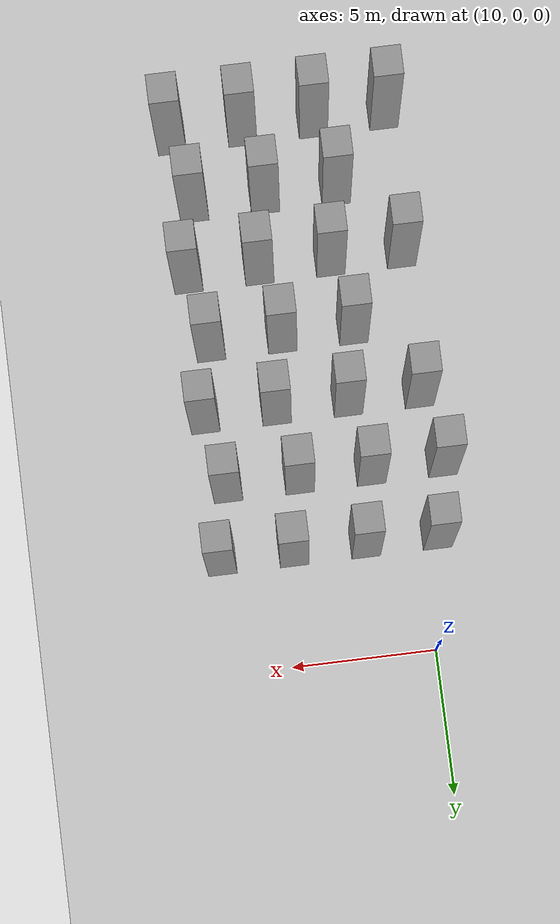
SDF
<sdf version="1.7">
 <world name="default">
  <model name="ground_plane">
   <static>1</static>
   <link name="link">
    <collision name="collision">
     <geometry><plane><normal>0 0 1</normal><size>100 100</size></plane></geometry>
     <surface>
      <contact><collide_bitmask>65535</collide_bitmask></contact>
      <friction><ode><mu>100</mu><mu2>50</mu2></ode></friction>
     </surface>
    </collision>
    <visual name="visual">
     <cast_shadows>0</cast_shadows>
     <geometry><plane><normal>0 0 1</normal><size>100 100</size></plane></geometry>
     <material>
      <script><uri>file://media/materials/scripts/gazebo.material</uri><name>Gazebo/Grey</name></script>
     </material>
    </visual>
   </link>
  </model>
  <model name="unit_box_static12">
   <link name="link">
    <inertial>
     <mass>1</mass>
     <inertia>
      <ixx>0.166667</ixx>
      <ixy>0</ixy>
      <ixz>0</ixz>
      <iyy>0.166667</iyy>
      <iyz>0</iyz>
      <izz>0.166667</izz>
     </inertia>
    </inertial>
    <visual name="visual">
     <geometry><box><size>1 1 8</size></box></geometry>
     <material>
      <script><name>Gazebo/Grey</name><uri>file://media/materials/scripts/gazebo.material</uri></script>
      <shader type="pixel"/>
     </material>
    </visual>
    <collision name="collision">
     <geometry><box><size>1 1 8</size></box></geometry>
     <surface>
      <friction>
       <ode><mu>1</mu><mu2>1</mu2><fdir1>0 0 0</fdir1><slip1>0</slip1><slip2>0</slip2></ode>
       <torsional>
        <coefficient>1</coefficient>
        <patch_radius>0</patch_radius>
        <surface_radius>0</surface_radius>
        <use_patch_radius>1</use_patch_radius>
        <ode><slip>0</slip></ode>
       </torsional>
      </friction>
      <bounce><restitution_coefficient>0</restitution_coefficient><threshold>1e+06</threshold></bounce>
      <contact>
       <collide_without_contact>0</collide_without_contact>
       <collide_without_contact_bitmask>1</collide_without_contact_bitmask>
       <collide_bitmask>1</collide_bitmask>
       <ode>
        <soft_cfm>0</soft_cfm>
        <soft_erp>0.2</soft_erp>
        <kp>1e+13</kp>
        <kd>1</kd>
        <max_vel>0.01</max_vel>
        <min_depth>0</min_depth>
       </ode>
       <bullet>
        <split_impulse>1</split_impulse>
        <split_impulse_penetration_threshold>-0.01</split_impulse_penetration_threshold>
        <soft_cfm>0</soft_cfm>
        <soft_erp>0.2</soft_erp>
        <kp>1e+13</kp>
        <kd>1</kd>
       </bullet>
      </contact>
     </surface>
    </collision>
   </link>
   <static>1</static>
   <pose>9.5 -19 4 0 -0 0</pose>
  </model>
  <model name="unit_box_static13">
   <link name="link">
    <inertial>
     <mass>1</mass>
     <inertia>
      <ixx>0.166667</ixx>
      <ixy>0</ixy>
      <ixz>0</ixz>
      <iyy>0.166667</iyy>
      <iyz>0</iyz>
      <izz>0.166667</izz>
     </inertia>
    </inertial>
    <visual name="visual">
     <geometry><box><size>1 1 8</size></box></geometry>
     <material>
      <script><name>Gazebo/Grey</name><uri>file://media/materials/scripts/gazebo.material</uri></script>
      <shader type="pixel"/>
     </material>
    </visual>
    <collision name="collision">
     <geometry><box><size>1 1 8</size></box></geometry>
     <surface>
      <friction>
       <ode><mu>1</mu><mu2>1</mu2><fdir1>0 0 0</fdir1><slip1>0</slip1><slip2>0</slip2></ode>
       <torsional>
        <coefficient>1</coefficient>
        <patch_radius>0</patch_radius>
        <surface_radius>0</surface_radius>
        <use_patch_radius>1</use_patch_radius>
        <ode><slip>0</slip></ode>
       </torsional>
      </friction>
      <bounce><restitution_coefficient>0</restitution_coefficient><threshold>1e+06</threshold></bounce>
      <contact>
       <collide_without_contact>0</collide_without_contact>
       <collide_without_contact_bitmask>1</collide_without_contact_bitmask>
       <collide_bitmask>1</collide_bitmask>
       <ode>
        <soft_cfm>0</soft_cfm>
        <soft_erp>0.2</soft_erp>
        <kp>1e+13</kp>
        <kd>1</kd>
        <max_vel>0.01</max_vel>
        <min_depth>0</min_depth>
       </ode>
       <bullet>
        <split_impulse>1</split_impulse>
        <split_impulse_penetration_threshold>-0.01</split_impulse_penetration_threshold>
        <soft_cfm>0</soft_cfm>
        <soft_erp>0.2</soft_erp>
        <kp>1e+13</kp>
        <kd>1</kd>
       </bullet>
      </contact>
     </surface>
    </collision>
   </link>
   <static>1</static>
   <pose>12 -19 4 0 -0 0</pose>
  </model>
  <model name="unit_box_static14">
   <link name="link">
    <inertial>
     <mass>1</mass>
     <inertia>
      <ixx>0.166667</ixx>
      <ixy>0</ixy>
      <ixz>0</ixz>
      <iyy>0.166667</iyy>
      <iyz>0</iyz>
      <izz>0.166667</izz>
     </inertia>
    </inertial>
    <visual name="visual">
     <geometry><box><size>1 1 8</size></box></geometry>
     <material>
      <script><name>Gazebo/Grey</name><uri>file://media/materials/scripts/gazebo.material</uri></script>
      <shader type="pixel"/>
     </material>
    </visual>
    <collision name="collision">
     <geometry><box><size>1 1 8</size></box></geometry>
     <surface>
      <friction>
       <ode><mu>1</mu><mu2>1</mu2><fdir1>0 0 0</fdir1><slip1>0</slip1><slip2>0</slip2></ode>
       <torsional>
        <coefficient>1</coefficient>
        <patch_radius>0</patch_radius>
        <surface_radius>0</surface_radius>
        <use_patch_radius>1</use_patch_radius>
        <ode><slip>0</slip></ode>
       </torsional>
      </friction>
      <bounce><restitution_coefficient>0</restitution_coefficient><threshold>1e+06</threshold></bounce>
      <contact>
       <collide_without_contact>0</collide_without_contact>
       <collide_without_contact_bitmask>1</collide_without_contact_bitmask>
       <collide_bitmask>1</collide_bitmask>
       <ode>
        <soft_cfm>0</soft_cfm>
        <soft_erp>0.2</soft_erp>
        <kp>1e+13</kp>
        <kd>1</kd>
        <max_vel>0.01</max_vel>
        <min_depth>0</min_depth>
       </ode>
       <bullet>
        <split_impulse>1</split_impulse>
        <split_impulse_penetration_threshold>-0.01</split_impulse_penetration_threshold>
        <soft_cfm>0</soft_cfm>
        <soft_erp>0.2</soft_erp>
        <kp>1e+13</kp>
        <kd>1</kd>
       </bullet>
      </contact>
     </surface>
    </collision>
   </link>
   <static>1</static>
   <pose>14.5 -19 4 0 -0 0</pose>
  </model>
  <model name="unit_box_static15">
   <link name="link">
    <inertial>
     <mass>1</mass>
     <inertia>
      <ixx>0.166667</ixx>
      <ixy>0</ixy>
      <ixz>0</ixz>
      <iyy>0.166667</iyy>
      <iyz>0</iyz>
      <izz>0.166667</izz>
     </inertia>
    </inertial>
    <visual name="visual">
     <geometry><box><size>1 1 8</size></box></geometry>
     <material>
      <script><name>Gazebo/Grey</name><uri>file://media/materials/scripts/gazebo.material</uri></script>
      <shader type="pixel"/>
     </material>
    </visual>
    <collision name="collision">
     <geometry><box><size>1 1 8</size></box></geometry>
     <surface>
      <friction>
       <ode><mu>1</mu><mu2>1</mu2><fdir1>0 0 0</fdir1><slip1>0</slip1><slip2>0</slip2></ode>
       <torsional>
        <coefficient>1</coefficient>
        <patch_radius>0</patch_radius>
        <surface_radius>0</surface_radius>
        <use_patch_radius>1</use_patch_radius>
        <ode><slip>0</slip></ode>
       </torsional>
      </friction>
      <bounce><restitution_coefficient>0</restitution_coefficient><threshold>1e+06</threshold></bounce>
      <contact>
       <collide_without_contact>0</collide_without_contact>
       <collide_without_contact_bitmask>1</collide_without_contact_bitmask>
       <collide_bitmask>1</collide_bitmask>
       <ode>
        <soft_cfm>0</soft_cfm>
        <soft_erp>0.2</soft_erp>
        <kp>1e+13</kp>
        <kd>1</kd>
        <max_vel>0.01</max_vel>
        <min_depth>0</min_depth>
       </ode>
       <bullet>
        <split_impulse>1</split_impulse>
        <split_impulse_penetration_threshold>-0.01</split_impulse_penetration_threshold>
        <soft_cfm>0</soft_cfm>
        <soft_erp>0.2</soft_erp>
        <kp>1e+13</kp>
        <kd>1</kd>
       </bullet>
      </contact>
     </surface>
    </collision>
   </link>
   <static>1</static>
   <pose>17 -19 4 0 -0 0</pose>
  </model>
  <model name="unit_box_static27">
   <link name="link">
    <inertial>
     <mass>1</mass>
     <inertia>
      <ixx>0.166667</ixx>
      <ixy>0</ixy>
      <ixz>0</ixz>
      <iyy>0.166667</iyy>
      <iyz>0</iyz>
      <izz>0.166667</izz>
     </inertia>
    </inertial>
    <visual name="visual">
     <geometry><box><size>1 1 8</size></box></geometry>
     <material>
      <script><name>Gazebo/Grey</name><uri>file://media/materials/scripts/gazebo.material</uri></script>
      <shader type="pixel"/>
     </material>
    </visual>
    <collision name="collision">
     <geometry><box><size>1 1 8</size></box></geometry>
     <surface>
      <friction>
       <ode><mu>1</mu><mu2>1</mu2><fdir1>0 0 0</fdir1><slip1>0</slip1><slip2>0</slip2></ode>
       <torsional>
        <coefficient>1</coefficient>
        <patch_radius>0</patch_radius>
        <surface_radius>0</surface_radius>
        <use_patch_radius>1</use_patch_radius>
        <ode><slip>0</slip></ode>
       </torsional>
      </friction>
      <bounce><restitution_coefficient>0</restitution_coefficient><threshold>1e+06</threshold></bounce>
      <contact>
       <collide_without_contact>0</collide_without_contact>
       <collide_without_contact_bitmask>1</collide_without_contact_bitmask>
       <collide_bitmask>1</collide_bitmask>
       <ode>
        <soft_cfm>0</soft_cfm>
        <soft_erp>0.2</soft_erp>
        <kp>1e+13</kp>
        <kd>1</kd>
        <max_vel>0.01</max_vel>
        <min_depth>0</min_depth>
       </ode>
       <bullet>
        <split_impulse>1</split_impulse>
        <split_impulse_penetration_threshold>-0.01</split_impulse_penetration_threshold>
        <soft_cfm>0</soft_cfm>
        <soft_erp>0.2</soft_erp>
        <kp>1e+13</kp>
        <kd>1</kd>
       </bullet>
      </contact>
     </surface>
    </collision>
   </link>
   <static>1</static>
   <pose>11.5 -16.5 4 0 -0 0</pose>
  </model>
  <model name="unit_box_static28">
   <link name="link">
    <inertial>
     <mass>1</mass>
     <inertia>
      <ixx>0.166667</ixx>
      <ixy>0</ixy>
      <ixz>0</ixz>
      <iyy>0.166667</iyy>
      <iyz>0</iyz>
      <izz>0.166667</izz>
     </inertia>
    </inertial>
    <visual name="visual">
     <geometry><box><size>1 1 8</size></box></geometry>
     <material>
      <script><name>Gazebo/Grey</name><uri>file://media/materials/scripts/gazebo.material</uri></script>
      <shader type="pixel"/>
     </material>
    </visual>
    <collision name="collision">
     <geometry><box><size>1 1 8</size></box></geometry>
     <surface>
      <friction>
       <ode><mu>1</mu><mu2>1</mu2><fdir1>0 0 0</fdir1><slip1>0</slip1><slip2>0</slip2></ode>
       <torsional>
        <coefficient>1</coefficient>
        <patch_radius>0</patch_radius>
        <surface_radius>0</surface_radius>
        <use_patch_radius>1</use_patch_radius>
        <ode><slip>0</slip></ode>
       </torsional>
      </friction>
      <bounce><restitution_coefficient>0</restitution_coefficient><threshold>1e+06</threshold></bounce>
      <contact>
       <collide_without_contact>0</collide_without_contact>
       <collide_without_contact_bitmask>1</collide_without_contact_bitmask>
       <collide_bitmask>1</collide_bitmask>
       <ode>
        <soft_cfm>0</soft_cfm>
        <soft_erp>0.2</soft_erp>
        <kp>1e+13</kp>
        <kd>1</kd>
        <max_vel>0.01</max_vel>
        <min_depth>0</min_depth>
       </ode>
       <bullet>
        <split_impulse>1</split_impulse>
        <split_impulse_penetration_threshold>-0.01</split_impulse_penetration_threshold>
        <soft_cfm>0</soft_cfm>
        <soft_erp>0.2</soft_erp>
        <kp>1e+13</kp>
        <kd>1</kd>
       </bullet>
      </contact>
     </surface>
    </collision>
   </link>
   <static>1</static>
   <pose>14 -16.5 4 0 -0 0</pose>
  </model>
  <model name="unit_box_static29">
   <link name="link">
    <inertial>
     <mass>1</mass>
     <inertia>
      <ixx>0.166667</ixx>
      <ixy>0</ixy>
      <ixz>0</ixz>
      <iyy>0.166667</iyy>
      <iyz>0</iyz>
      <izz>0.166667</izz>
     </inertia>
    </inertial>
    <visual name="visual">
     <geometry><box><size>1 1 8</size></box></geometry>
     <material>
      <script><name>Gazebo/Grey</name><uri>file://media/materials/scripts/gazebo.material</uri></script>
      <shader type="pixel"/>
     </material>
    </visual>
    <collision name="collision">
     <geometry><box><size>1 1 8</size></box></geometry>
     <surface>
      <friction>
       <ode><mu>1</mu><mu2>1</mu2><fdir1>0 0 0</fdir1><slip1>0</slip1><slip2>0</slip2></ode>
       <torsional>
        <coefficient>1</coefficient>
        <patch_radius>0</patch_radius>
        <surface_radius>0</surface_radius>
        <use_patch_radius>1</use_patch_radius>
        <ode><slip>0</slip></ode>
       </torsional>
      </friction>
      <bounce><restitution_coefficient>0</restitution_coefficient><threshold>1e+06</threshold></bounce>
      <contact>
       <collide_without_contact>0</collide_without_contact>
       <collide_without_contact_bitmask>1</collide_without_contact_bitmask>
       <collide_bitmask>1</collide_bitmask>
       <ode>
        <soft_cfm>0</soft_cfm>
        <soft_erp>0.2</soft_erp>
        <kp>1e+13</kp>
        <kd>1</kd>
        <max_vel>0.01</max_vel>
        <min_depth>0</min_depth>
       </ode>
       <bullet>
        <split_impulse>1</split_impulse>
        <split_impulse_penetration_threshold>-0.01</split_impulse_penetration_threshold>
        <soft_cfm>0</soft_cfm>
        <soft_erp>0.2</soft_erp>
        <kp>1e+13</kp>
        <kd>1</kd>
       </bullet>
      </contact>
     </surface>
    </collision>
   </link>
   <static>1</static>
   <pose>16.5 -16.5 4 0 -0 0</pose>
  </model>
  <model name="unit_box_static41">
   <link name="link">
    <inertial>
     <mass>1</mass>
     <inertia>
      <ixx>0.166667</ixx>
      <ixy>0</ixy>
      <ixz>0</ixz>
      <iyy>0.166667</iyy>
      <iyz>0</iyz>
      <izz>0.166667</izz>
     </inertia>
    </inertial>
    <visual name="visual">
     <geometry><box><size>1 1 8</size></box></geometry>
     <material>
      <script><name>Gazebo/Grey</name><uri>file://media/materials/scripts/gazebo.material</uri></script>
      <shader type="pixel"/>
     </material>
    </visual>
    <collision name="collision">
     <geometry><box><size>1 1 8</size></box></geometry>
     <surface>
      <friction>
       <ode><mu>1</mu><mu2>1</mu2><fdir1>0 0 0</fdir1><slip1>0</slip1><slip2>0</slip2></ode>
       <torsional>
        <coefficient>1</coefficient>
        <patch_radius>0</patch_radius>
        <surface_radius>0</surface_radius>
        <use_patch_radius>1</use_patch_radius>
        <ode><slip>0</slip></ode>
       </torsional>
      </friction>
      <bounce><restitution_coefficient>0</restitution_coefficient><threshold>1e+06</threshold></bounce>
      <contact>
       <collide_without_contact>0</collide_without_contact>
       <collide_without_contact_bitmask>1</collide_without_contact_bitmask>
       <collide_bitmask>1</collide_bitmask>
       <ode>
        <soft_cfm>0</soft_cfm>
        <soft_erp>0.2</soft_erp>
        <kp>1e+13</kp>
        <kd>1</kd>
        <max_vel>0.01</max_vel>
        <min_depth>0</min_depth>
       </ode>
       <bullet>
        <split_impulse>1</split_impulse>
        <split_impulse_penetration_threshold>-0.01</split_impulse_penetration_threshold>
        <soft_cfm>0</soft_cfm>
        <soft_erp>0.2</soft_erp>
        <kp>1e+13</kp>
        <kd>1</kd>
       </bullet>
      </contact>
     </surface>
    </collision>
   </link>
   <static>1</static>
   <pose>9.5 -14 4 0 -0 0</pose>
  </model>
  <model name="unit_box_static42">
   <link name="link">
    <inertial>
     <mass>1</mass>
     <inertia>
      <ixx>0.166667</ixx>
      <ixy>0</ixy>
      <ixz>0</ixz>
      <iyy>0.166667</iyy>
      <iyz>0</iyz>
      <izz>0.166667</izz>
     </inertia>
    </inertial>
    <visual name="visual">
     <geometry><box><size>1 1 8</size></box></geometry>
     <material>
      <script><name>Gazebo/Grey</name><uri>file://media/materials/scripts/gazebo.material</uri></script>
      <shader type="pixel"/>
     </material>
    </visual>
    <collision name="collision">
     <geometry><box><size>1 1 8</size></box></geometry>
     <surface>
      <friction>
       <ode><mu>1</mu><mu2>1</mu2><fdir1>0 0 0</fdir1><slip1>0</slip1><slip2>0</slip2></ode>
       <torsional>
        <coefficient>1</coefficient>
        <patch_radius>0</patch_radius>
        <surface_radius>0</surface_radius>
        <use_patch_radius>1</use_patch_radius>
        <ode><slip>0</slip></ode>
       </torsional>
      </friction>
      <bounce><restitution_coefficient>0</restitution_coefficient><threshold>1e+06</threshold></bounce>
      <contact>
       <collide_without_contact>0</collide_without_contact>
       <collide_without_contact_bitmask>1</collide_without_contact_bitmask>
       <collide_bitmask>1</collide_bitmask>
       <ode>
        <soft_cfm>0</soft_cfm>
        <soft_erp>0.2</soft_erp>
        <kp>1e+13</kp>
        <kd>1</kd>
        <max_vel>0.01</max_vel>
        <min_depth>0</min_depth>
       </ode>
       <bullet>
        <split_impulse>1</split_impulse>
        <split_impulse_penetration_threshold>-0.01</split_impulse_penetration_threshold>
        <soft_cfm>0</soft_cfm>
        <soft_erp>0.2</soft_erp>
        <kp>1e+13</kp>
        <kd>1</kd>
       </bullet>
      </contact>
     </surface>
    </collision>
   </link>
   <static>1</static>
   <pose>12 -14 4 0 -0 0</pose>
  </model>
  <model name="unit_box_static43">
   <link name="link">
    <inertial>
     <mass>1</mass>
     <inertia>
      <ixx>0.166667</ixx>
      <ixy>0</ixy>
      <ixz>0</ixz>
      <iyy>0.166667</iyy>
      <iyz>0</iyz>
      <izz>0.166667</izz>
     </inertia>
    </inertial>
    <visual name="visual">
     <geometry><box><size>1 1 8</size></box></geometry>
     <material>
      <script><name>Gazebo/Grey</name><uri>file://media/materials/scripts/gazebo.material</uri></script>
      <shader type="pixel"/>
     </material>
    </visual>
    <collision name="collision">
     <geometry><box><size>1 1 8</size></box></geometry>
     <surface>
      <friction>
       <ode><mu>1</mu><mu2>1</mu2><fdir1>0 0 0</fdir1><slip1>0</slip1><slip2>0</slip2></ode>
       <torsional>
        <coefficient>1</coefficient>
        <patch_radius>0</patch_radius>
        <surface_radius>0</surface_radius>
        <use_patch_radius>1</use_patch_radius>
        <ode><slip>0</slip></ode>
       </torsional>
      </friction>
      <bounce><restitution_coefficient>0</restitution_coefficient><threshold>1e+06</threshold></bounce>
      <contact>
       <collide_without_contact>0</collide_without_contact>
       <collide_without_contact_bitmask>1</collide_without_contact_bitmask>
       <collide_bitmask>1</collide_bitmask>
       <ode>
        <soft_cfm>0</soft_cfm>
        <soft_erp>0.2</soft_erp>
        <kp>1e+13</kp>
        <kd>1</kd>
        <max_vel>0.01</max_vel>
        <min_depth>0</min_depth>
       </ode>
       <bullet>
        <split_impulse>1</split_impulse>
        <split_impulse_penetration_threshold>-0.01</split_impulse_penetration_threshold>
        <soft_cfm>0</soft_cfm>
        <soft_erp>0.2</soft_erp>
        <kp>1e+13</kp>
        <kd>1</kd>
       </bullet>
      </contact>
     </surface>
    </collision>
   </link>
   <static>1</static>
   <pose>14.5 -14 4 0 -0 0</pose>
  </model>
  <model name="unit_box_static44">
   <link name="link">
    <inertial>
     <mass>1</mass>
     <inertia>
      <ixx>0.166667</ixx>
      <ixy>0</ixy>
      <ixz>0</ixz>
      <iyy>0.166667</iyy>
      <iyz>0</iyz>
      <izz>0.166667</izz>
     </inertia>
    </inertial>
    <visual name="visual">
     <geometry><box><size>1 1 8</size></box></geometry>
     <material>
      <script><name>Gazebo/Grey</name><uri>file://media/materials/scripts/gazebo.material</uri></script>
      <shader type="pixel"/>
     </material>
    </visual>
    <collision name="collision">
     <geometry><box><size>1 1 8</size></box></geometry>
     <surface>
      <friction>
       <ode><mu>1</mu><mu2>1</mu2><fdir1>0 0 0</fdir1><slip1>0</slip1><slip2>0</slip2></ode>
       <torsional>
        <coefficient>1</coefficient>
        <patch_radius>0</patch_radius>
        <surface_radius>0</surface_radius>
        <use_patch_radius>1</use_patch_radius>
        <ode><slip>0</slip></ode>
       </torsional>
      </friction>
      <bounce><restitution_coefficient>0</restitution_coefficient><threshold>1e+06</threshold></bounce>
      <contact>
       <collide_without_contact>0</collide_without_contact>
       <collide_without_contact_bitmask>1</collide_without_contact_bitmask>
       <collide_bitmask>1</collide_bitmask>
       <ode>
        <soft_cfm>0</soft_cfm>
        <soft_erp>0.2</soft_erp>
        <kp>1e+13</kp>
        <kd>1</kd>
        <max_vel>0.01</max_vel>
        <min_depth>0</min_depth>
       </ode>
       <bullet>
        <split_impulse>1</split_impulse>
        <split_impulse_penetration_threshold>-0.01</split_impulse_penetration_threshold>
        <soft_cfm>0</soft_cfm>
        <soft_erp>0.2</soft_erp>
        <kp>1e+13</kp>
        <kd>1</kd>
       </bullet>
      </contact>
     </surface>
    </collision>
   </link>
   <static>1</static>
   <pose>17 -14 4 0 -0 0</pose>
  </model>
  <model name="unit_box_static56">
   <link name="link">
    <inertial>
     <mass>1</mass>
     <inertia>
      <ixx>0.166667</ixx>
      <ixy>0</ixy>
      <ixz>0</ixz>
      <iyy>0.166667</iyy>
      <iyz>0</iyz>
      <izz>0.166667</izz>
     </inertia>
    </inertial>
    <visual name="visual">
     <geometry><box><size>1 1 8</size></box></geometry>
     <material>
      <script><name>Gazebo/Grey</name><uri>file://media/materials/scripts/gazebo.material</uri></script>
      <shader type="pixel"/>
     </material>
    </visual>
    <collision name="collision">
     <geometry><box><size>1 1 8</size></box></geometry>
     <surface>
      <friction>
       <ode><mu>1</mu><mu2>1</mu2><fdir1>0 0 0</fdir1><slip1>0</slip1><slip2>0</slip2></ode>
       <torsional>
        <coefficient>1</coefficient>
        <patch_radius>0</patch_radius>
        <surface_radius>0</surface_radius>
        <use_patch_radius>1</use_patch_radius>
        <ode><slip>0</slip></ode>
       </torsional>
      </friction>
      <bounce><restitution_coefficient>0</restitution_coefficient><threshold>1e+06</threshold></bounce>
      <contact>
       <collide_without_contact>0</collide_without_contact>
       <collide_without_contact_bitmask>1</collide_without_contact_bitmask>
       <collide_bitmask>1</collide_bitmask>
       <ode>
        <soft_cfm>0</soft_cfm>
        <soft_erp>0.2</soft_erp>
        <kp>1e+13</kp>
        <kd>1</kd>
        <max_vel>0.01</max_vel>
        <min_depth>0</min_depth>
       </ode>
       <bullet>
        <split_impulse>1</split_impulse>
        <split_impulse_penetration_threshold>-0.01</split_impulse_penetration_threshold>
        <soft_cfm>0</soft_cfm>
        <soft_erp>0.2</soft_erp>
        <kp>1e+13</kp>
        <kd>1</kd>
       </bullet>
      </contact>
     </surface>
    </collision>
   </link>
   <static>1</static>
   <pose>11.5 -11.5 4 0 -0 0</pose>
  </model>
  <model name="unit_box_static57">
   <link name="link">
    <inertial>
     <mass>1</mass>
     <inertia>
      <ixx>0.166667</ixx>
      <ixy>0</ixy>
      <ixz>0</ixz>
      <iyy>0.166667</iyy>
      <iyz>0</iyz>
      <izz>0.166667</izz>
     </inertia>
    </inertial>
    <visual name="visual">
     <geometry><box><size>1 1 8</size></box></geometry>
     <material>
      <script><name>Gazebo/Grey</name><uri>file://media/materials/scripts/gazebo.material</uri></script>
      <shader type="pixel"/>
     </material>
    </visual>
    <collision name="collision">
     <geometry><box><size>1 1 8</size></box></geometry>
     <surface>
      <friction>
       <ode><mu>1</mu><mu2>1</mu2><fdir1>0 0 0</fdir1><slip1>0</slip1><slip2>0</slip2></ode>
       <torsional>
        <coefficient>1</coefficient>
        <patch_radius>0</patch_radius>
        <surface_radius>0</surface_radius>
        <use_patch_radius>1</use_patch_radius>
        <ode><slip>0</slip></ode>
       </torsional>
      </friction>
      <bounce><restitution_coefficient>0</restitution_coefficient><threshold>1e+06</threshold></bounce>
      <contact>
       <collide_without_contact>0</collide_without_contact>
       <collide_without_contact_bitmask>1</collide_without_contact_bitmask>
       <collide_bitmask>1</collide_bitmask>
       <ode>
        <soft_cfm>0</soft_cfm>
        <soft_erp>0.2</soft_erp>
        <kp>1e+13</kp>
        <kd>1</kd>
        <max_vel>0.01</max_vel>
        <min_depth>0</min_depth>
       </ode>
       <bullet>
        <split_impulse>1</split_impulse>
        <split_impulse_penetration_threshold>-0.01</split_impulse_penetration_threshold>
        <soft_cfm>0</soft_cfm>
        <soft_erp>0.2</soft_erp>
        <kp>1e+13</kp>
        <kd>1</kd>
       </bullet>
      </contact>
     </surface>
    </collision>
   </link>
   <static>1</static>
   <pose>14 -11.5 4 0 -0 0</pose>
  </model>
  <model name="unit_box_static58">
   <link name="link">
    <inertial>
     <mass>1</mass>
     <inertia>
      <ixx>0.166667</ixx>
      <ixy>0</ixy>
      <ixz>0</ixz>
      <iyy>0.166667</iyy>
      <iyz>0</iyz>
      <izz>0.166667</izz>
     </inertia>
    </inertial>
    <visual name="visual">
     <geometry><box><size>1 1 8</size></box></geometry>
     <material>
      <script><name>Gazebo/Grey</name><uri>file://media/materials/scripts/gazebo.material</uri></script>
      <shader type="pixel"/>
     </material>
    </visual>
    <collision name="collision">
     <geometry><box><size>1 1 8</size></box></geometry>
     <surface>
      <friction>
       <ode><mu>1</mu><mu2>1</mu2><fdir1>0 0 0</fdir1><slip1>0</slip1><slip2>0</slip2></ode>
       <torsional>
        <coefficient>1</coefficient>
        <patch_radius>0</patch_radius>
        <surface_radius>0</surface_radius>
        <use_patch_radius>1</use_patch_radius>
        <ode><slip>0</slip></ode>
       </torsional>
      </friction>
      <bounce><restitution_coefficient>0</restitution_coefficient><threshold>1e+06</threshold></bounce>
      <contact>
       <collide_without_contact>0</collide_without_contact>
       <collide_without_contact_bitmask>1</collide_without_contact_bitmask>
       <collide_bitmask>1</collide_bitmask>
       <ode>
        <soft_cfm>0</soft_cfm>
        <soft_erp>0.2</soft_erp>
        <kp>1e+13</kp>
        <kd>1</kd>
        <max_vel>0.01</max_vel>
        <min_depth>0</min_depth>
       </ode>
       <bullet>
        <split_impulse>1</split_impulse>
        <split_impulse_penetration_threshold>-0.01</split_impulse_penetration_threshold>
        <soft_cfm>0</soft_cfm>
        <soft_erp>0.2</soft_erp>
        <kp>1e+13</kp>
        <kd>1</kd>
       </bullet>
      </contact>
     </surface>
    </collision>
   </link>
   <static>1</static>
   <pose>16.5 -11.5 4 0 -0 0</pose>
  </model>
  <model name="unit_box_static70">
   <link name="link">
    <inertial>
     <mass>1</mass>
     <inertia>
      <ixx>0.166667</ixx>
      <ixy>0</ixy>
      <ixz>0</ixz>
      <iyy>0.166667</iyy>
      <iyz>0</iyz>
      <izz>0.166667</izz>
     </inertia>
    </inertial>
    <visual name="visual">
     <geometry><box><size>1 1 8</size></box></geometry>
     <material>
      <script><name>Gazebo/Grey</name><uri>file://media/materials/scripts/gazebo.material</uri></script>
      <shader type="pixel"/>
     </material>
    </visual>
    <collision name="collision">
     <geometry><box><size>1 1 8</size></box></geometry>
     <surface>
      <friction>
       <ode><mu>1</mu><mu2>1</mu2><fdir1>0 0 0</fdir1><slip1>0</slip1><slip2>0</slip2></ode>
       <torsional>
        <coefficient>1</coefficient>
        <patch_radius>0</patch_radius>
        <surface_radius>0</surface_radius>
        <use_patch_radius>1</use_patch_radius>
        <ode><slip>0</slip></ode>
       </torsional>
      </friction>
      <bounce><restitution_coefficient>0</restitution_coefficient><threshold>1e+06</threshold></bounce>
      <contact>
       <collide_without_contact>0</collide_without_contact>
       <collide_without_contact_bitmask>1</collide_without_contact_bitmask>
       <collide_bitmask>1</collide_bitmask>
       <ode>
        <soft_cfm>0</soft_cfm>
        <soft_erp>0.2</soft_erp>
        <kp>1e+13</kp>
        <kd>1</kd>
        <max_vel>0.01</max_vel>
        <min_depth>0</min_depth>
       </ode>
       <bullet>
        <split_impulse>1</split_impulse>
        <split_impulse_penetration_threshold>-0.01</split_impulse_penetration_threshold>
        <soft_cfm>0</soft_cfm>
        <soft_erp>0.2</soft_erp>
        <kp>1e+13</kp>
        <kd>1</kd>
       </bullet>
      </contact>
     </surface>
    </collision>
   </link>
   <static>1</static>
   <pose>9.5 -9 4 0 -0 0</pose>
  </model>
  <model name="unit_box_static71">
   <link name="link">
    <inertial>
     <mass>1</mass>
     <inertia>
      <ixx>0.166667</ixx>
      <ixy>0</ixy>
      <ixz>0</ixz>
      <iyy>0.166667</iyy>
      <iyz>0</iyz>
      <izz>0.166667</izz>
     </inertia>
    </inertial>
    <visual name="visual">
     <geometry><box><size>1 1 8</size></box></geometry>
     <material>
      <script><name>Gazebo/Grey</name><uri>file://media/materials/scripts/gazebo.material</uri></script>
      <shader type="pixel"/>
     </material>
    </visual>
    <collision name="collision">
     <geometry><box><size>1 1 8</size></box></geometry>
     <surface>
      <friction>
       <ode><mu>1</mu><mu2>1</mu2><fdir1>0 0 0</fdir1><slip1>0</slip1><slip2>0</slip2></ode>
       <torsional>
        <coefficient>1</coefficient>
        <patch_radius>0</patch_radius>
        <surface_radius>0</surface_radius>
        <use_patch_radius>1</use_patch_radius>
        <ode><slip>0</slip></ode>
       </torsional>
      </friction>
      <bounce><restitution_coefficient>0</restitution_coefficient><threshold>1e+06</threshold></bounce>
      <contact>
       <collide_without_contact>0</collide_without_contact>
       <collide_without_contact_bitmask>1</collide_without_contact_bitmask>
       <collide_bitmask>1</collide_bitmask>
       <ode>
        <soft_cfm>0</soft_cfm>
        <soft_erp>0.2</soft_erp>
        <kp>1e+13</kp>
        <kd>1</kd>
        <max_vel>0.01</max_vel>
        <min_depth>0</min_depth>
       </ode>
       <bullet>
        <split_impulse>1</split_impulse>
        <split_impulse_penetration_threshold>-0.01</split_impulse_penetration_threshold>
        <soft_cfm>0</soft_cfm>
        <soft_erp>0.2</soft_erp>
        <kp>1e+13</kp>
        <kd>1</kd>
       </bullet>
      </contact>
     </surface>
    </collision>
   </link>
   <static>1</static>
   <pose>12 -9 4 0 -0 0</pose>
  </model>
  <model name="unit_box_static72">
   <link name="link">
    <inertial>
     <mass>1</mass>
     <inertia>
      <ixx>0.166667</ixx>
      <ixy>0</ixy>
      <ixz>0</ixz>
      <iyy>0.166667</iyy>
      <iyz>0</iyz>
      <izz>0.166667</izz>
     </inertia>
    </inertial>
    <visual name="visual">
     <geometry><box><size>1 1 8</size></box></geometry>
     <material>
      <script><name>Gazebo/Grey</name><uri>file://media/materials/scripts/gazebo.material</uri></script>
      <shader type="pixel"/>
     </material>
    </visual>
    <collision name="collision">
     <geometry><box><size>1 1 8</size></box></geometry>
     <surface>
      <friction>
       <ode><mu>1</mu><mu2>1</mu2><fdir1>0 0 0</fdir1><slip1>0</slip1><slip2>0</slip2></ode>
       <torsional>
        <coefficient>1</coefficient>
        <patch_radius>0</patch_radius>
        <surface_radius>0</surface_radius>
        <use_patch_radius>1</use_patch_radius>
        <ode><slip>0</slip></ode>
       </torsional>
      </friction>
      <bounce><restitution_coefficient>0</restitution_coefficient><threshold>1e+06</threshold></bounce>
      <contact>
       <collide_without_contact>0</collide_without_contact>
       <collide_without_contact_bitmask>1</collide_without_contact_bitmask>
       <collide_bitmask>1</collide_bitmask>
       <ode>
        <soft_cfm>0</soft_cfm>
        <soft_erp>0.2</soft_erp>
        <kp>1e+13</kp>
        <kd>1</kd>
        <max_vel>0.01</max_vel>
        <min_depth>0</min_depth>
       </ode>
       <bullet>
        <split_impulse>1</split_impulse>
        <split_impulse_penetration_threshold>-0.01</split_impulse_penetration_threshold>
        <soft_cfm>0</soft_cfm>
        <soft_erp>0.2</soft_erp>
        <kp>1e+13</kp>
        <kd>1</kd>
       </bullet>
      </contact>
     </surface>
    </collision>
   </link>
   <static>1</static>
   <pose>14.5 -9 4 0 -0 0</pose>
  </model>
  <model name="unit_box_static73">
   <link name="link">
    <inertial>
     <mass>1</mass>
     <inertia>
      <ixx>0.166667</ixx>
      <ixy>0</ixy>
      <ixz>0</ixz>
      <iyy>0.166667</iyy>
      <iyz>0</iyz>
      <izz>0.166667</izz>
     </inertia>
    </inertial>
    <visual name="visual">
     <geometry><box><size>1 1 8</size></box></geometry>
     <material>
      <script><name>Gazebo/Grey</name><uri>file://media/materials/scripts/gazebo.material</uri></script>
      <shader type="pixel"/>
     </material>
    </visual>
    <collision name="collision">
     <geometry><box><size>1 1 8</size></box></geometry>
     <surface>
      <friction>
       <ode><mu>1</mu><mu2>1</mu2><fdir1>0 0 0</fdir1><slip1>0</slip1><slip2>0</slip2></ode>
       <torsional>
        <coefficient>1</coefficient>
        <patch_radius>0</patch_radius>
        <surface_radius>0</surface_radius>
        <use_patch_radius>1</use_patch_radius>
        <ode><slip>0</slip></ode>
       </torsional>
      </friction>
      <bounce><restitution_coefficient>0</restitution_coefficient><threshold>1e+06</threshold></bounce>
      <contact>
       <collide_without_contact>0</collide_without_contact>
       <collide_without_contact_bitmask>1</collide_without_contact_bitmask>
       <collide_bitmask>1</collide_bitmask>
       <ode>
        <soft_cfm>0</soft_cfm>
        <soft_erp>0.2</soft_erp>
        <kp>1e+13</kp>
        <kd>1</kd>
        <max_vel>0.01</max_vel>
        <min_depth>0</min_depth>
       </ode>
       <bullet>
        <split_impulse>1</split_impulse>
        <split_impulse_penetration_threshold>-0.01</split_impulse_penetration_threshold>
        <soft_cfm>0</soft_cfm>
        <soft_erp>0.2</soft_erp>
        <kp>1e+13</kp>
        <kd>1</kd>
       </bullet>
      </contact>
     </surface>
    </collision>
   </link>
   <static>1</static>
   <pose>17 -9 4 0 -0 0</pose>
  </model>
  <model name="unit_box_static84">
   <link name="link">
    <inertial>
     <mass>1</mass>
     <inertia>
      <ixx>0.166667</ixx>
      <ixy>0</ixy>
      <ixz>0</ixz>
      <iyy>0.166667</iyy>
      <iyz>0</iyz>
      <izz>0.166667</izz>
     </inertia>
    </inertial>
    <visual name="visual">
     <geometry><box><size>1 1 8</size></box></geometry>
     <material>
      <script><name>Gazebo/Grey</name><uri>file://media/materials/scripts/gazebo.material</uri></script>
      <shader type="pixel"/>
     </material>
    </visual>
    <collision name="collision">
     <geometry><box><size>1 1 8</size></box></geometry>
     <surface>
      <friction>
       <ode><mu>1</mu><mu2>1</mu2><fdir1>0 0 0</fdir1><slip1>0</slip1><slip2>0</slip2></ode>
       <torsional>
        <coefficient>1</coefficient>
        <patch_radius>0</patch_radius>
        <surface_radius>0</surface_radius>
        <use_patch_radius>1</use_patch_radius>
        <ode><slip>0</slip></ode>
       </torsional>
      </friction>
      <bounce><restitution_coefficient>0</restitution_coefficient><threshold>1e+06</threshold></bounce>
      <contact>
       <collide_without_contact>0</collide_without_contact>
       <collide_without_contact_bitmask>1</collide_without_contact_bitmask>
       <collide_bitmask>1</collide_bitmask>
       <ode>
        <soft_cfm>0</soft_cfm>
        <soft_erp>0.2</soft_erp>
        <kp>1e+13</kp>
        <kd>1</kd>
        <max_vel>0.01</max_vel>
        <min_depth>0</min_depth>
       </ode>
       <bullet>
        <split_impulse>1</split_impulse>
        <split_impulse_penetration_threshold>-0.01</split_impulse_penetration_threshold>
        <soft_cfm>0</soft_cfm>
        <soft_erp>0.2</soft_erp>
        <kp>1e+13</kp>
        <kd>1</kd>
       </bullet>
      </contact>
     </surface>
    </collision>
   </link>
   <static>1</static>
   <pose>9 -6.5 4 0 -0 0</pose>
  </model>
  <model name="unit_box_static85">
   <link name="link">
    <inertial>
     <mass>1</mass>
     <inertia>
      <ixx>0.166667</ixx>
      <ixy>0</ixy>
      <ixz>0</ixz>
      <iyy>0.166667</iyy>
      <iyz>0</iyz>
      <izz>0.166667</izz>
     </inertia>
    </inertial>
    <visual name="visual">
     <geometry><box><size>1 1 8</size></box></geometry>
     <material>
      <script><name>Gazebo/Grey</name><uri>file://media/materials/scripts/gazebo.material</uri></script>
      <shader type="pixel"/>
     </material>
    </visual>
    <collision name="collision">
     <geometry><box><size>1 1 8</size></box></geometry>
     <surface>
      <friction>
       <ode><mu>1</mu><mu2>1</mu2><fdir1>0 0 0</fdir1><slip1>0</slip1><slip2>0</slip2></ode>
       <torsional>
        <coefficient>1</coefficient>
        <patch_radius>0</patch_radius>
        <surface_radius>0</surface_radius>
        <use_patch_radius>1</use_patch_radius>
        <ode><slip>0</slip></ode>
       </torsional>
      </friction>
      <bounce><restitution_coefficient>0</restitution_coefficient><threshold>1e+06</threshold></bounce>
      <contact>
       <collide_without_contact>0</collide_without_contact>
       <collide_without_contact_bitmask>1</collide_without_contact_bitmask>
       <collide_bitmask>1</collide_bitmask>
       <ode>
        <soft_cfm>0</soft_cfm>
        <soft_erp>0.2</soft_erp>
        <kp>1e+13</kp>
        <kd>1</kd>
        <max_vel>0.01</max_vel>
        <min_depth>0</min_depth>
       </ode>
       <bullet>
        <split_impulse>1</split_impulse>
        <split_impulse_penetration_threshold>-0.01</split_impulse_penetration_threshold>
        <soft_cfm>0</soft_cfm>
        <soft_erp>0.2</soft_erp>
        <kp>1e+13</kp>
        <kd>1</kd>
       </bullet>
      </contact>
     </surface>
    </collision>
   </link>
   <static>1</static>
   <pose>11.5 -6.5 4 0 -0 0</pose>
  </model>
  <model name="unit_box_static86">
   <link name="link">
    <inertial>
     <mass>1</mass>
     <inertia>
      <ixx>0.166667</ixx>
      <ixy>0</ixy>
      <ixz>0</ixz>
      <iyy>0.166667</iyy>
      <iyz>0</iyz>
      <izz>0.166667</izz>
     </inertia>
    </inertial>
    <visual name="visual">
     <geometry><box><size>1 1 8</size></box></geometry>
     <material>
      <script><name>Gazebo/Grey</name><uri>file://media/materials/scripts/gazebo.material</uri></script>
      <shader type="pixel"/>
     </material>
    </visual>
    <collision name="collision">
     <geometry><box><size>1 1 8</size></box></geometry>
     <surface>
      <friction>
       <ode><mu>1</mu><mu2>1</mu2><fdir1>0 0 0</fdir1><slip1>0</slip1><slip2>0</slip2></ode>
       <torsional>
        <coefficient>1</coefficient>
        <patch_radius>0</patch_radius>
        <surface_radius>0</surface_radius>
        <use_patch_radius>1</use_patch_radius>
        <ode><slip>0</slip></ode>
       </torsional>
      </friction>
      <bounce><restitution_coefficient>0</restitution_coefficient><threshold>1e+06</threshold></bounce>
      <contact>
       <collide_without_contact>0</collide_without_contact>
       <collide_without_contact_bitmask>1</collide_without_contact_bitmask>
       <collide_bitmask>1</collide_bitmask>
       <ode>
        <soft_cfm>0</soft_cfm>
        <soft_erp>0.2</soft_erp>
        <kp>1e+13</kp>
        <kd>1</kd>
        <max_vel>0.01</max_vel>
        <min_depth>0</min_depth>
       </ode>
       <bullet>
        <split_impulse>1</split_impulse>
        <split_impulse_penetration_threshold>-0.01</split_impulse_penetration_threshold>
        <soft_cfm>0</soft_cfm>
        <soft_erp>0.2</soft_erp>
        <kp>1e+13</kp>
        <kd>1</kd>
       </bullet>
      </contact>
     </surface>
    </collision>
   </link>
   <static>1</static>
   <pose>14 -6.5 4 0 -0 0</pose>
  </model>
  <model name="unit_box_static87">
   <link name="link">
    <inertial>
     <mass>1</mass>
     <inertia>
      <ixx>0.166667</ixx>
      <ixy>0</ixy>
      <ixz>0</ixz>
      <iyy>0.166667</iyy>
      <iyz>0</iyz>
      <izz>0.166667</izz>
     </inertia>
    </inertial>
    <visual name="visual">
     <geometry><box><size>1 1 8</size></box></geometry>
     <material>
      <script><name>Gazebo/Grey</name><uri>file://media/materials/scripts/gazebo.material</uri></script>
      <shader type="pixel"/>
     </material>
    </visual>
    <collision name="collision">
     <geometry><box><size>1 1 8</size></box></geometry>
     <surface>
      <friction>
       <ode><mu>1</mu><mu2>1</mu2><fdir1>0 0 0</fdir1><slip1>0</slip1><slip2>0</slip2></ode>
       <torsional>
        <coefficient>1</coefficient>
        <patch_radius>0</patch_radius>
        <surface_radius>0</surface_radius>
        <use_patch_radius>1</use_patch_radius>
        <ode><slip>0</slip></ode>
       </torsional>
      </friction>
      <bounce><restitution_coefficient>0</restitution_coefficient><threshold>1e+06</threshold></bounce>
      <contact>
       <collide_without_contact>0</collide_without_contact>
       <collide_without_contact_bitmask>1</collide_without_contact_bitmask>
       <collide_bitmask>1</collide_bitmask>
       <ode>
        <soft_cfm>0</soft_cfm>
        <soft_erp>0.2</soft_erp>
        <kp>1e+13</kp>
        <kd>1</kd>
        <max_vel>0.01</max_vel>
        <min_depth>0</min_depth>
       </ode>
       <bullet>
        <split_impulse>1</split_impulse>
        <split_impulse_penetration_threshold>-0.01</split_impulse_penetration_threshold>
        <soft_cfm>0</soft_cfm>
        <soft_erp>0.2</soft_erp>
        <kp>1e+13</kp>
        <kd>1</kd>
       </bullet>
      </contact>
     </surface>
    </collision>
   </link>
   <static>1</static>
   <pose>16.5 -6.5 4 0 -0 0</pose>
  </model>
  <model name="unit_box_static99">
   <link name="link">
    <inertial>
     <mass>1</mass>
     <inertia>
      <ixx>0.166667</ixx>
      <ixy>0</ixy>
      <ixz>0</ixz>
      <iyy>0.166667</iyy>
      <iyz>0</iyz>
      <izz>0.166667</izz>
     </inertia>
    </inertial>
    <visual name="visual">
     <geometry><box><size>1 1 8</size></box></geometry>
     <material>
      <script><name>Gazebo/Grey</name><uri>file://media/materials/scripts/gazebo.material</uri></script>
      <shader type="pixel"/>
     </material>
    </visual>
    <collision name="collision">
     <geometry><box><size>1 1 8</size></box></geometry>
     <surface>
      <friction>
       <ode><mu>1</mu><mu2>1</mu2><fdir1>0 0 0</fdir1><slip1>0</slip1><slip2>0</slip2></ode>
       <torsional>
        <coefficient>1</coefficient>
        <patch_radius>0</patch_radius>
        <surface_radius>0</surface_radius>
        <use_patch_radius>1</use_patch_radius>
        <ode><slip>0</slip></ode>
       </torsional>
      </friction>
      <bounce><restitution_coefficient>0</restitution_coefficient><threshold>1e+06</threshold></bounce>
      <contact>
       <collide_without_contact>0</collide_without_contact>
       <collide_without_contact_bitmask>1</collide_without_contact_bitmask>
       <collide_bitmask>1</collide_bitmask>
       <ode>
        <soft_cfm>0</soft_cfm>
        <soft_erp>0.2</soft_erp>
        <kp>1e+13</kp>
        <kd>1</kd>
        <max_vel>0.01</max_vel>
        <min_depth>0</min_depth>
       </ode>
       <bullet>
        <split_impulse>1</split_impulse>
        <split_impulse_penetration_threshold>-0.01</split_impulse_penetration_threshold>
        <soft_cfm>0</soft_cfm>
        <soft_erp>0.2</soft_erp>
        <kp>1e+13</kp>
        <kd>1</kd>
       </bullet>
      </contact>
     </surface>
    </collision>
   </link>
   <static>1</static>
   <pose>9.5 -4 4 0 -0 0</pose>
  </model>
  <model name="unit_box_static100">
   <link name="link">
    <inertial>
     <mass>1</mass>
     <inertia>
      <ixx>0.166667</ixx>
      <ixy>0</ixy>
      <ixz>0</ixz>
      <iyy>0.166667</iyy>
      <iyz>0</iyz>
      <izz>0.166667</izz>
     </inertia>
    </inertial>
    <visual name="visual">
     <geometry><box><size>1 1 8</size></box></geometry>
     <material>
      <script><name>Gazebo/Grey</name><uri>file://media/materials/scripts/gazebo.material</uri></script>
      <shader type="pixel"/>
     </material>
    </visual>
    <collision name="collision">
     <geometry><box><size>1 1 8</size></box></geometry>
     <surface>
      <friction>
       <ode><mu>1</mu><mu2>1</mu2><fdir1>0 0 0</fdir1><slip1>0</slip1><slip2>0</slip2></ode>
       <torsional>
        <coefficient>1</coefficient>
        <patch_radius>0</patch_radius>
        <surface_radius>0</surface_radius>
        <use_patch_radius>1</use_patch_radius>
        <ode><slip>0</slip></ode>
       </torsional>
      </friction>
      <bounce><restitution_coefficient>0</restitution_coefficient><threshold>1e+06</threshold></bounce>
      <contact>
       <collide_without_contact>0</collide_without_contact>
       <collide_without_contact_bitmask>1</collide_without_contact_bitmask>
       <collide_bitmask>1</collide_bitmask>
       <ode>
        <soft_cfm>0</soft_cfm>
        <soft_erp>0.2</soft_erp>
        <kp>1e+13</kp>
        <kd>1</kd>
        <max_vel>0.01</max_vel>
        <min_depth>0</min_depth>
       </ode>
       <bullet>
        <split_impulse>1</split_impulse>
        <split_impulse_penetration_threshold>-0.01</split_impulse_penetration_threshold>
        <soft_cfm>0</soft_cfm>
        <soft_erp>0.2</soft_erp>
        <kp>1e+13</kp>
        <kd>1</kd>
       </bullet>
      </contact>
     </surface>
    </collision>
   </link>
   <static>1</static>
   <pose>12 -4 4 0 -0 0</pose>
  </model>
  <model name="unit_box_static101">
   <link name="link">
    <inertial>
     <mass>1</mass>
     <inertia>
      <ixx>0.166667</ixx>
      <ixy>0</ixy>
      <ixz>0</ixz>
      <iyy>0.166667</iyy>
      <iyz>0</iyz>
      <izz>0.166667</izz>
     </inertia>
    </inertial>
    <visual name="visual">
     <geometry><box><size>1 1 8</size></box></geometry>
     <material>
      <script><name>Gazebo/Grey</name><uri>file://media/materials/scripts/gazebo.material</uri></script>
      <shader type="pixel"/>
     </material>
    </visual>
    <collision name="collision">
     <geometry><box><size>1 1 8</size></box></geometry>
     <surface>
      <friction>
       <ode><mu>1</mu><mu2>1</mu2><fdir1>0 0 0</fdir1><slip1>0</slip1><slip2>0</slip2></ode>
       <torsional>
        <coefficient>1</coefficient>
        <patch_radius>0</patch_radius>
        <surface_radius>0</surface_radius>
        <use_patch_radius>1</use_patch_radius>
        <ode><slip>0</slip></ode>
       </torsional>
      </friction>
      <bounce><restitution_coefficient>0</restitution_coefficient><threshold>1e+06</threshold></bounce>
      <contact>
       <collide_without_contact>0</collide_without_contact>
       <collide_without_contact_bitmask>1</collide_without_contact_bitmask>
       <collide_bitmask>1</collide_bitmask>
       <ode>
        <soft_cfm>0</soft_cfm>
        <soft_erp>0.2</soft_erp>
        <kp>1e+13</kp>
        <kd>1</kd>
        <max_vel>0.01</max_vel>
        <min_depth>0</min_depth>
       </ode>
       <bullet>
        <split_impulse>1</split_impulse>
        <split_impulse_penetration_threshold>-0.01</split_impulse_penetration_threshold>
        <soft_cfm>0</soft_cfm>
        <soft_erp>0.2</soft_erp>
        <kp>1e+13</kp>
        <kd>1</kd>
       </bullet>
      </contact>
     </surface>
    </collision>
   </link>
   <static>1</static>
   <pose>14.5 -4 4 0 -0 0</pose>
  </model>
  <model name="unit_box_static102">
   <link name="link">
    <inertial>
     <mass>1</mass>
     <inertia>
      <ixx>0.166667</ixx>
      <ixy>0</ixy>
      <ixz>0</ixz>
      <iyy>0.166667</iyy>
      <iyz>0</iyz>
      <izz>0.166667</izz>
     </inertia>
    </inertial>
    <visual name="visual">
     <geometry><box><size>1 1 8</size></box></geometry>
     <material>
      <script><name>Gazebo/Grey</name><uri>file://media/materials/scripts/gazebo.material</uri></script>
      <shader type="pixel"/>
     </material>
    </visual>
    <collision name="collision">
     <geometry><box><size>1 1 8</size></box></geometry>
     <surface>
      <friction>
       <ode><mu>1</mu><mu2>1</mu2><fdir1>0 0 0</fdir1><slip1>0</slip1><slip2>0</slip2></ode>
       <torsional>
        <coefficient>1</coefficient>
        <patch_radius>0</patch_radius>
        <surface_radius>0</surface_radius>
        <use_patch_radius>1</use_patch_radius>
        <ode><slip>0</slip></ode>
       </torsional>
      </friction>
      <bounce><restitution_coefficient>0</restitution_coefficient><threshold>1e+06</threshold></bounce>
      <contact>
       <collide_without_contact>0</collide_without_contact>
       <collide_without_contact_bitmask>1</collide_without_contact_bitmask>
       <collide_bitmask>1</collide_bitmask>
       <ode>
        <soft_cfm>0</soft_cfm>
        <soft_erp>0.2</soft_erp>
        <kp>1e+13</kp>
        <kd>1</kd>
        <max_vel>0.01</max_vel>
        <min_depth>0</min_depth>
       </ode>
       <bullet>
        <split_impulse>1</split_impulse>
        <split_impulse_penetration_threshold>-0.01</split_impulse_penetration_threshold>
        <soft_cfm>0</soft_cfm>
        <soft_erp>0.2</soft_erp>
        <kp>1e+13</kp>
        <kd>1</kd>
       </bullet>
      </contact>
     </surface>
    </collision>
   </link>
   <static>1</static>
   <pose>17 -4 4 0 -0 0</pose>
  </model>
 </world>
</sdf>
